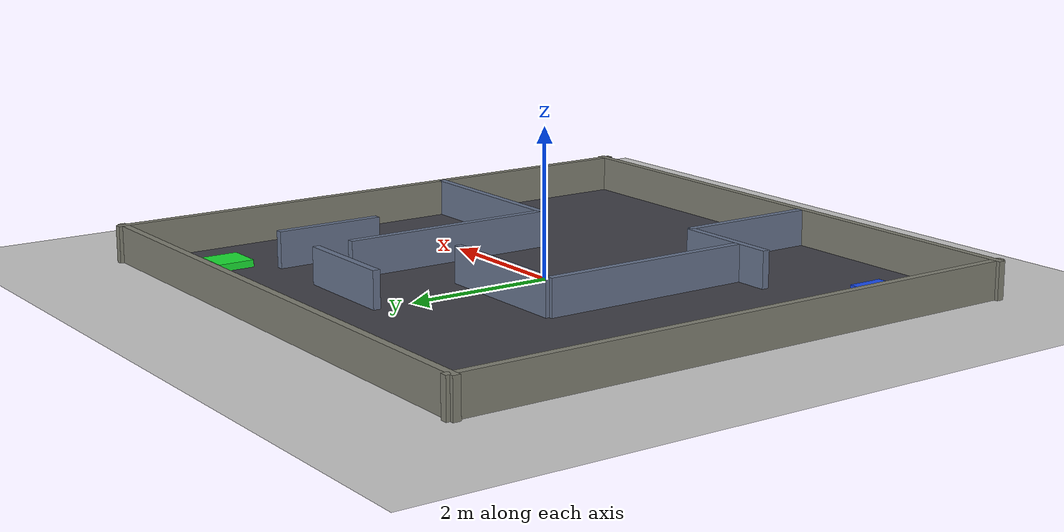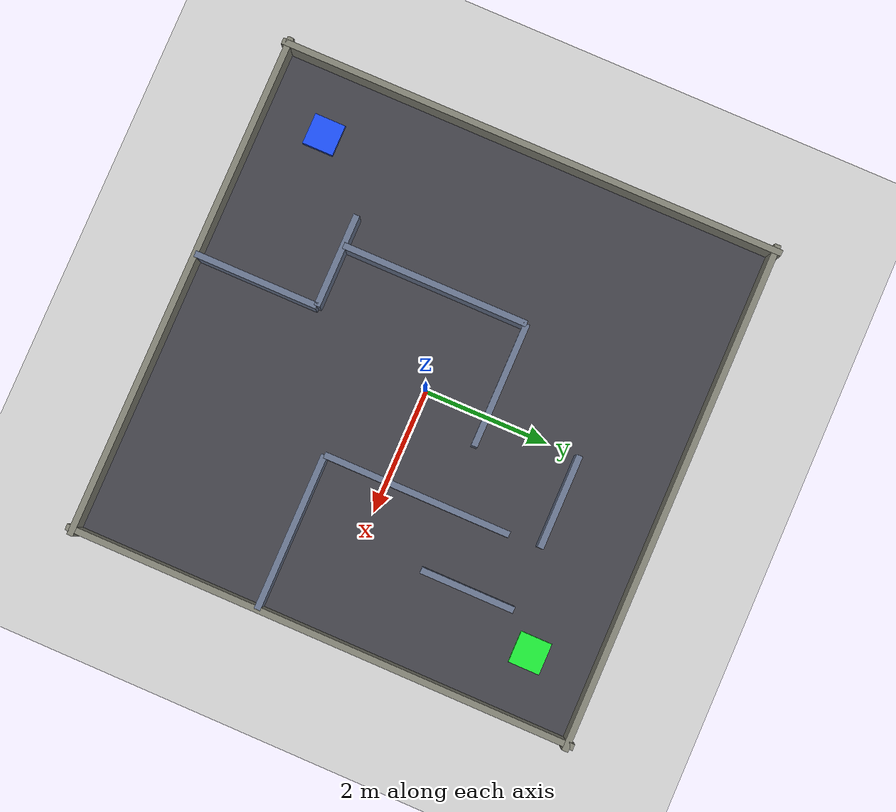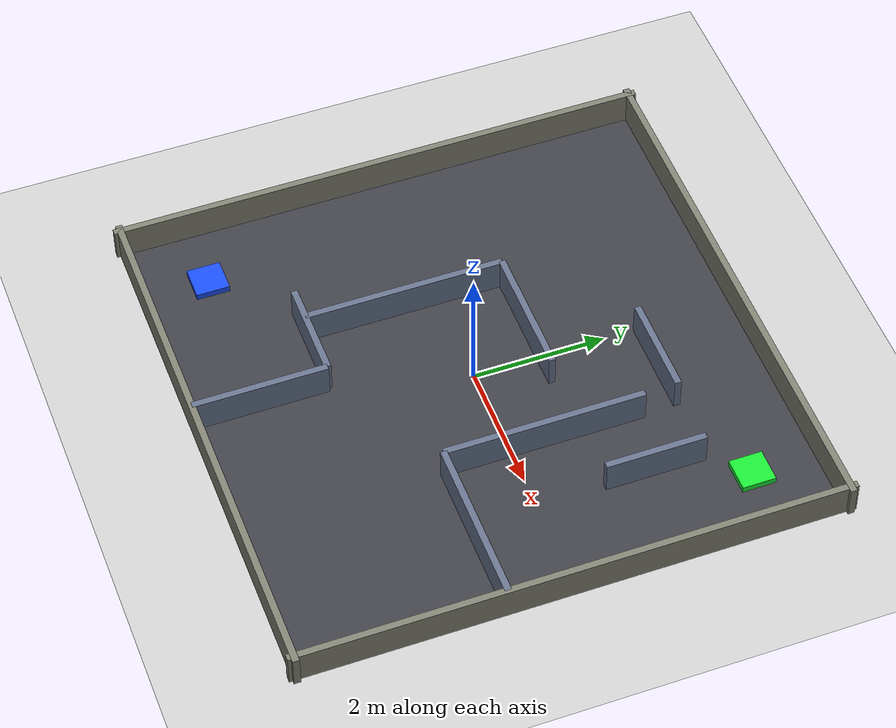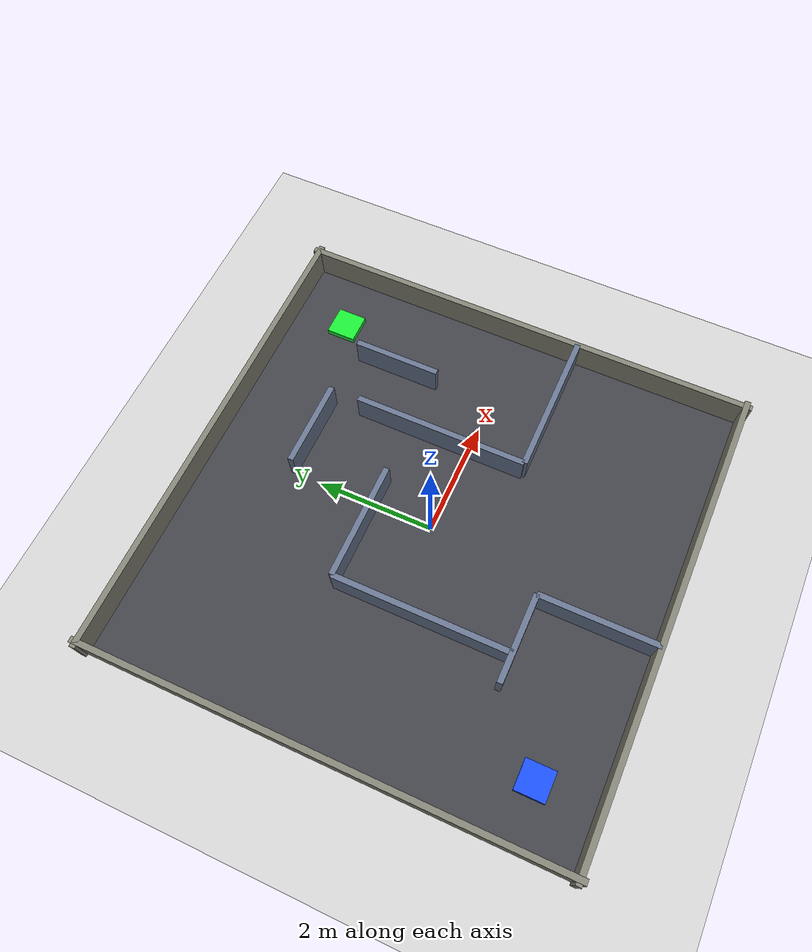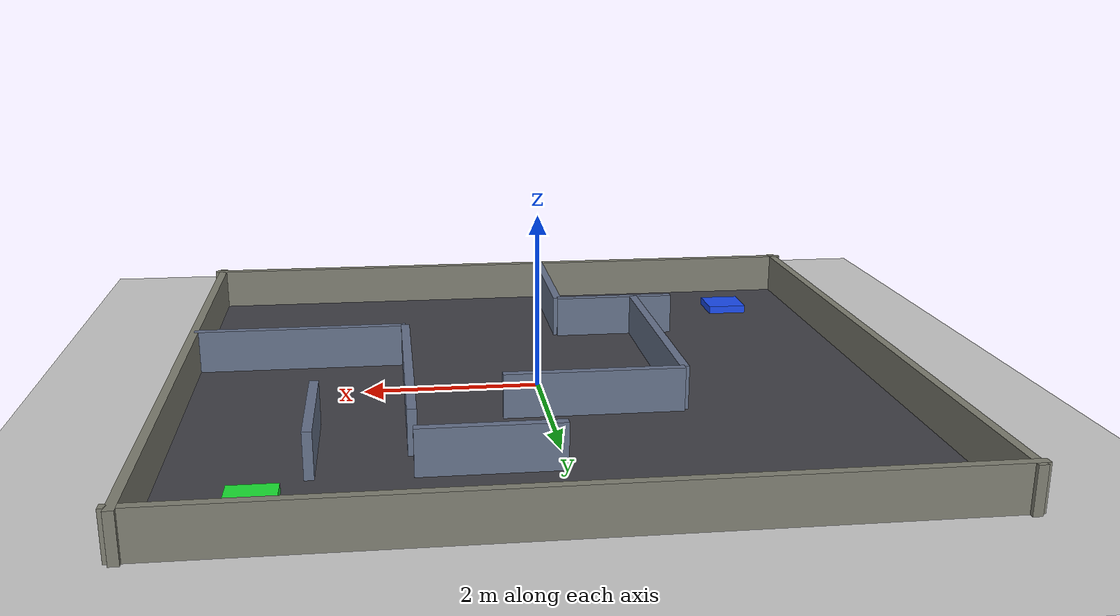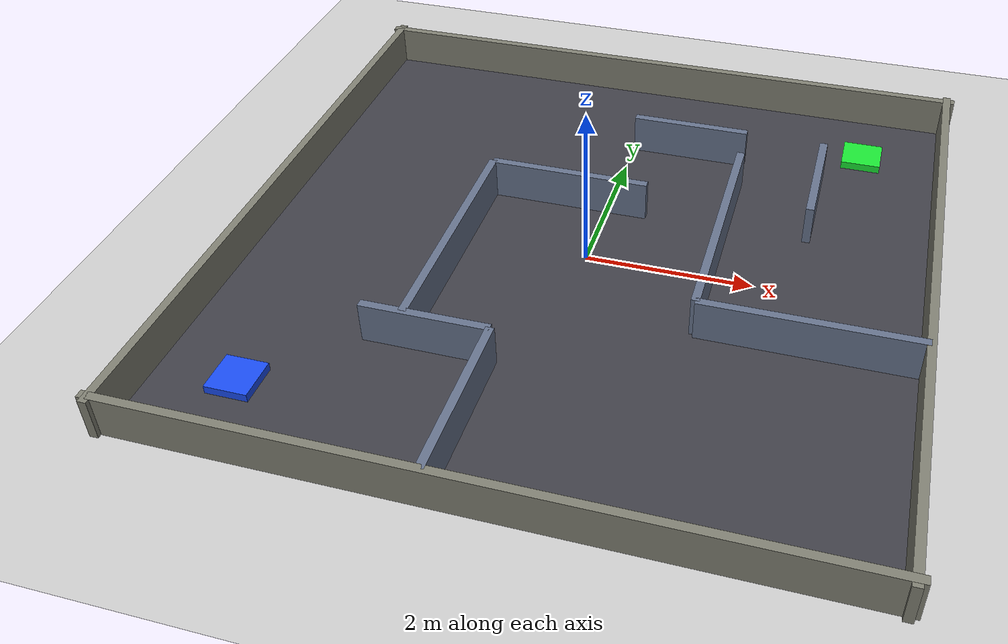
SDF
<?xml version="1.0"?>
<sdf version="1.6">
  <world name="default">
    <plugin filename="gz-sim-physics-system" name="gz::sim::systems::Physics"/>
    <plugin filename="gz-sim-user-commands-system" name="gz::sim::systems::UserCommands"/>
    <plugin filename="gz-sim-scene-broadcaster-system" name="gz::sim::systems::SceneBroadcaster"/>
    <plugin filename="gz-sim-sensors-system" name="gz::sim::systems::Sensors">
      <render_engine>ogre2</render_engine>
    </plugin>
    <plugin filename="gz-sim-imu-system" name="gz::sim::systems::Imu"/>

    <include>
      <uri>https://fuel.gazebosim.org/1.0/OpenRobotics/models/Ground Plane</uri>
    </include>
    <include>
      <uri>https://fuel.gazebosim.org/1.0/OpenRobotics/models/Sun</uri>
    </include>

    <gui fullscreen='0'>
      <camera name='user_camera'>
        <pose>0 0 14 0 1.5708 0</pose>
        <view_controller>orbit</view_controller>
      </camera>
    </gui>

    <physics type="ode">
      <real_time_update_rate>1000.0</real_time_update_rate>
      <max_step_size>0.001</max_step_size>
      <real_time_factor>1</real_time_factor>
      <ode>
        <solver>
          <type>quick</type>
          <iters>150</iters>
          <sor>1.4</sor>
          <use_dynamic_moi_rescaling>1</use_dynamic_moi_rescaling>
        </solver>
      </ode>
    </physics>

    <!-- Maze Arena: 8m x 8m                                          -->
    <!-- Robot spawns bottom-left (-3,-3), goal top-right (3,3)       -->
    <!-- Corridors are ~1.5m wide (plenty for TurtleBot)              -->
    <!-- Top-down view (S=start, G=goal, #=wall):                     -->

    <!-- Floor -->
    <model name="maze_floor">
      <static>true</static>
      <link name="link">
        <visual name="vis">
          <pose>0 0 0.001 0 0 0</pose>
          <geometry><box><size>8 8 0.002</size></box></geometry>
          <material>
            <ambient>0.25 0.25 0.28 1</ambient>
            <diffuse>0.25 0.25 0.28 1</diffuse>
          </material>
        </visual>
      </link>
    </model>

    <!-- ==================== OUTER WALLS ==================== -->
    <model name="outer_n">
      <static>true</static>
      <link name="link">
        <pose>0 4.0 0.25 0 0 0</pose>
        <collision name="col"><geometry><box><size>8.2 0.1 0.5</size></box></geometry></collision>
        <visual name="vis"><geometry><box><size>8.2 0.1 0.5</size></box></geometry>
          <material><ambient>0.5 0.5 0.45 1</ambient><diffuse>0.5 0.5 0.45 1</diffuse></material>
        </visual>
      </link>
    </model>
    <model name="outer_s">
      <static>true</static>
      <link name="link">
        <pose>0 -4.0 0.25 0 0 0</pose>
        <collision name="col"><geometry><box><size>8.2 0.1 0.5</size></box></geometry></collision>
        <visual name="vis"><geometry><box><size>8.2 0.1 0.5</size></box></geometry>
          <material><ambient>0.5 0.5 0.45 1</ambient><diffuse>0.5 0.5 0.45 1</diffuse></material>
        </visual>
      </link>
    </model>
    <model name="outer_e">
      <static>true</static>
      <link name="link">
        <pose>4.0 0 0.25 0 0 0</pose>
        <collision name="col"><geometry><box><size>0.1 8.2 0.5</size></box></geometry></collision>
        <visual name="vis"><geometry><box><size>0.1 8.2 0.5</size></box></geometry>
          <material><ambient>0.5 0.5 0.45 1</ambient><diffuse>0.5 0.5 0.45 1</diffuse></material>
        </visual>
      </link>
    </model>
    <model name="outer_w">
      <static>true</static>
      <link name="link">
        <pose>-4.0 0 0.25 0 0 0</pose>
        <collision name="col"><geometry><box><size>0.1 8.2 0.5</size></box></geometry></collision>
        <visual name="vis"><geometry><box><size>0.1 8.2 0.5</size></box></geometry>
          <material><ambient>0.5 0.5 0.45 1</ambient><diffuse>0.5 0.5 0.45 1</diffuse></material>
        </visual>
      </link>
    </model>

    <!-- ==================== INTERNAL WALLS ==================== -->
    <!-- All walls 0.1 thick, 0.5 tall, blue-tinted -->

    <!-- W1: horizontal, bottom area. From x=-2 to x=-0.5 at y=-2 -->
    <!-- Creates a pocket around the start zone -->
    <model name="mw1">
      <static>true</static>
      <link name="link">
        <pose>-1.25 -2.0 0.25 0 0 0</pose>
        <collision name="c"><geometry><box><size>1.5 0.1 0.5</size></box></geometry></collision>
        <visual name="v"><geometry><box><size>1.5 0.1 0.5</size></box></geometry>
          <material><ambient>0.4 0.45 0.55 1</ambient><diffuse>0.4 0.45 0.55 1</diffuse></material>
        </visual>
      </link>
    </model>

    <!-- W2: vertical, from y=-4 to y=-2 at x=-0.5 -->
    <model name="mw2">
      <static>true</static>
      <link name="link">
        <pose>-0.5 -3.0 0.25 0 0 0</pose>
        <collision name="c"><geometry><box><size>0.1 2.0 0.5</size></box></geometry></collision>
        <visual name="v"><geometry><box><size>0.1 2.0 0.5</size></box></geometry>
          <material><ambient>0.4 0.45 0.55 1</ambient><diffuse>0.4 0.45 0.55 1</diffuse></material>
        </visual>
      </link>
    </model>

    <!-- W3: vertical, from y=-2 to y=1 at x=-1.5 -->
    <!-- Forces right turn after leaving start -->
    <model name="mw3">
      <static>true</static>
      <link name="link">
        <pose>-1.5 -0.5 0.25 0 0 0</pose>
        <collision name="c"><geometry><box><size>0.1 3.0 0.5</size></box></geometry></collision>
        <visual name="v"><geometry><box><size>0.1 3.0 0.5</size></box></geometry>
          <material><ambient>0.4 0.45 0.55 1</ambient><diffuse>0.4 0.45 0.55 1</diffuse></material>
        </visual>
      </link>
    </model>

    <!-- W4: horizontal, from x=-1.5 to x=0.5 at y=1 -->
    <model name="mw4">
      <static>true</static>
      <link name="link">
        <pose>-0.5 1.0 0.25 0 0 0</pose>
        <collision name="c"><geometry><box><size>2.0 0.1 0.5</size></box></geometry></collision>
        <visual name="v"><geometry><box><size>2.0 0.1 0.5</size></box></geometry>
          <material><ambient>0.4 0.45 0.55 1</ambient><diffuse>0.4 0.45 0.55 1</diffuse></material>
        </visual>
      </link>
    </model>

    <!-- W5: horizontal, from x=1.5 to x=4 at y=-1 -->
    <!-- Creates lower-right corridor -->
    <model name="mw5">
      <static>true</static>
      <link name="link">
        <pose>2.75 -1.0 0.25 0 0 0</pose>
        <collision name="c"><geometry><box><size>2.5 0.1 0.5</size></box></geometry></collision>
        <visual name="v"><geometry><box><size>2.5 0.1 0.5</size></box></geometry>
          <material><ambient>0.4 0.45 0.55 1</ambient><diffuse>0.4 0.45 0.55 1</diffuse></material>
        </visual>
      </link>
    </model>

    <!-- W6: vertical, from y=-1 to y=2 at x=1.5 -->
    <model name="mw6">
      <static>true</static>
      <link name="link">
        <pose>1.5 0.5 0.25 0 0 0</pose>
        <collision name="c"><geometry><box><size>0.1 3.0 0.5</size></box></geometry></collision>
        <visual name="v"><geometry><box><size>0.1 3.0 0.5</size></box></geometry>
          <material><ambient>0.4 0.45 0.55 1</ambient><diffuse>0.4 0.45 0.55 1</diffuse></material>
        </visual>
      </link>
    </model>

    <!-- W7: horizontal, from x=0 to x=1.5 at y=2.5 -->
    <!-- Upper middle barrier -->
    <model name="mw7">
      <static>true</static>
      <link name="link">
        <pose>0.75 2.5 0.25 0 0 0</pose>
        <collision name="c"><geometry><box><size>1.5 0.1 0.5</size></box></geometry></collision>
        <visual name="v"><geometry><box><size>1.5 0.1 0.5</size></box></geometry>
          <material><ambient>0.4 0.45 0.55 1</ambient><diffuse>0.4 0.45 0.55 1</diffuse></material>
        </visual>
      </link>
    </model>

    <!-- W8: vertical, from y=1 to y=2.5 at x=2.5 -->
    <!-- Creates corridor to goal -->
    <model name="mw8">
      <static>true</static>
      <link name="link">
        <pose>2.5 1.75 0.25 0 0 0</pose>
        <collision name="c"><geometry><box><size>0.1 1.5 0.5</size></box></geometry></collision>
        <visual name="v"><geometry><box><size>0.1 1.5 0.5</size></box></geometry>
          <material><ambient>0.4 0.45 0.55 1</ambient><diffuse>0.4 0.45 0.55 1</diffuse></material>
        </visual>
      </link>
    </model>

    <!-- ==================== MARKERS ==================== -->
    <!-- Goal (green) at top-right -->
    <model name="goal_marker">
      <static>true</static>
      <link name="link">
        <pose>3.0 3.0 0.05 0 0 0</pose>
        <visual name="vis">
          <geometry><box><size>0.5 0.5 0.1</size></box></geometry>
          <material>
            <ambient>0.1 0.8 0.2 1</ambient>
            <diffuse>0.1 0.9 0.2 1</diffuse>
          </material>
        </visual>
      </link>
    </model>

    <!-- Start (blue) at bottom-left -->
    <model name="start_marker">
      <static>true</static>
      <link name="link">
        <pose>-3.0 -3.0 0.05 0 0 0</pose>
        <visual name="vis">
          <geometry><box><size>0.5 0.5 0.1</size></box></geometry>
          <material>
            <ambient>0.1 0.3 0.9 1</ambient>
            <diffuse>0.1 0.3 0.95 1</diffuse>
          </material>
        </visual>
      </link>
    </model>

  </world>
</sdf>
